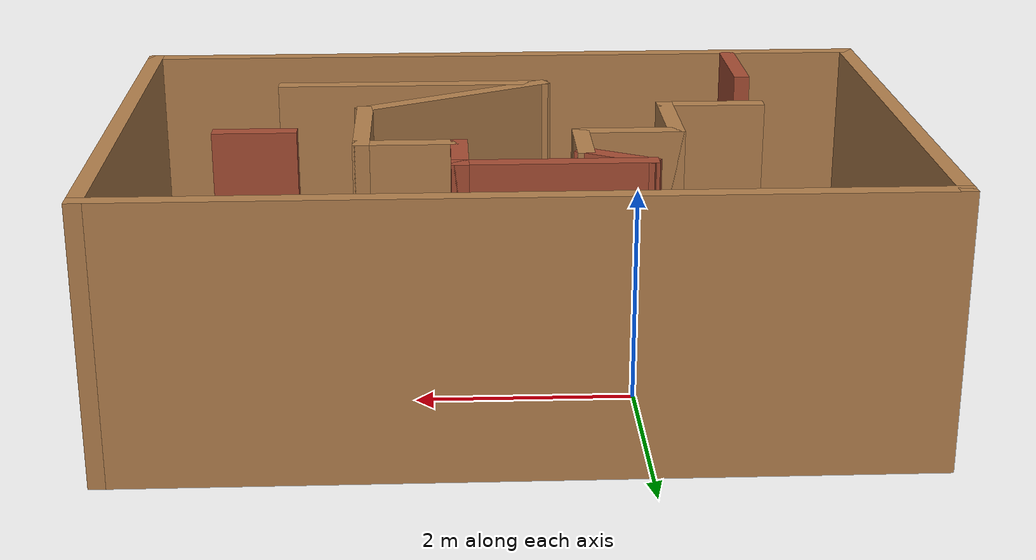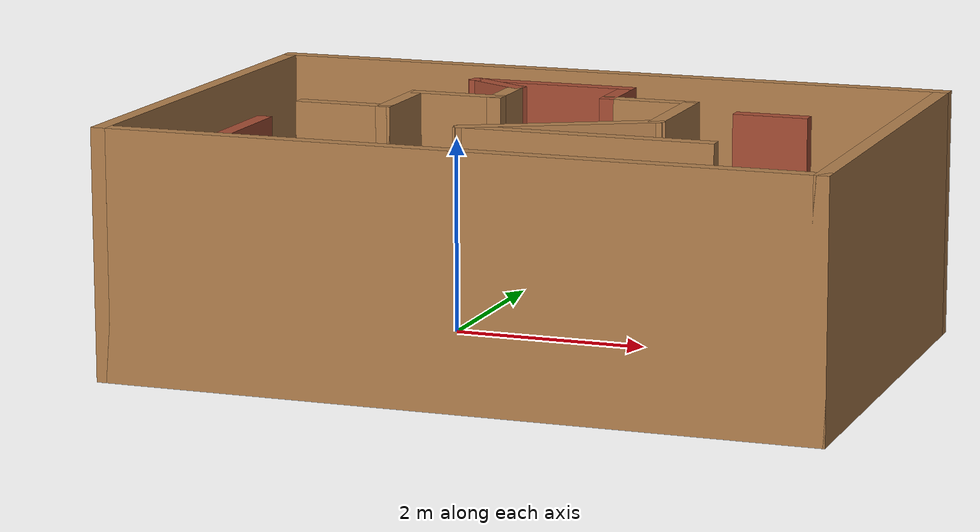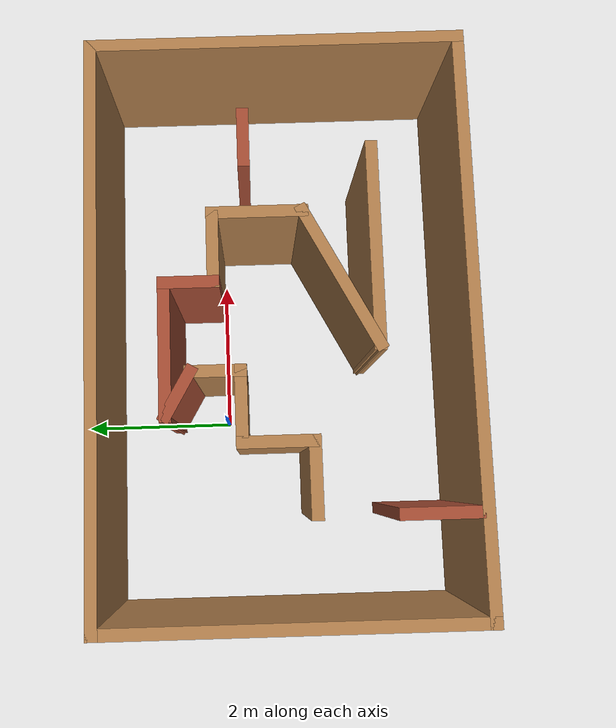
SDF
<?xml version='1.0'?>
<sdf version='1.7'>
  <model name='Test1'>
    <pose>1.08 -0.73 0 0 -0 0</pose>
    <link name='Wall_0'>
      <collision name='Wall_0_Collision'>
        <geometry>
          <box>
            <size>7.25 0.15 2.5</size>
          </box>
        </geometry>
        <pose>0 0 1.25 0 -0 0</pose>
      </collision>
      <visual name='Wall_0_Visual'>
        <pose>0 0 1.25 0 -0 0</pose>
        <geometry>
          <box>
            <size>7.25 0.15 2.5</size>
          </box>
        </geometry>
        <material>
          <script>
            <uri>file://media/materials/scripts/gazebo.material</uri>
            <name>Gazebo/Wood</name>
          </script>
          <ambient>1 1 1 1</ambient>
        </material>
        <meta>
          <layer>0</layer>
        </meta>
      </visual>
      <pose>0 -2.3 0 0 -0 0</pose>
    </link>
    <link name='Wall_1'>
      <collision name='Wall_1_Collision'>
        <geometry>
          <box>
            <size>4.75 0.15 2.5</size>
          </box>
        </geometry>
        <pose>0 0 1.25 0 -0 0</pose>
      </collision>
      <visual name='Wall_1_Visual'>
        <pose>0 0 1.25 0 -0 0</pose>
        <geometry>
          <box>
            <size>4.75 0.15 2.5</size>
          </box>
        </geometry>
        <material>
          <script>
            <uri>file://media/materials/scripts/gazebo.material</uri>
            <name>Gazebo/Wood</name>
          </script>
          <ambient>1 1 1 1</ambient>
        </material>
        <meta>
          <layer>0</layer>
        </meta>
      </visual>
      <pose>3.55 0 0 0 -0 1.5708</pose>
    </link>
    <link name='Wall_10'>
      <collision name='Wall_10_Collision'>
        <geometry>
          <box>
            <size>0.75 0.15 2.5</size>
          </box>
        </geometry>
        <pose>0 0 1.25 0 -0 0</pose>
      </collision>
      <visual name='Wall_10_Visual'>
        <pose>0 0 1.25 0 -0 0</pose>
        <geometry>
          <box>
            <size>0.75 0.15 2.5</size>
          </box>
        </geometry>
        <material>
          <script>
            <uri>file://media/materials/scripts/gazebo.material</uri>
            <name>Gazebo/Bricks</name>
          </script>
          <ambient>1 1 1 1</ambient>
        </material>
        <meta>
          <layer>0</layer>
        </meta>
      </visual>
      <pose>-0.838392 1.27519 0 0 -0 2.61799</pose>
    </link>
    <link name='Wall_11'>
      <collision name='Wall_11_Collision'>
        <geometry>
          <box>
            <size>1.75 0.15 2.5</size>
          </box>
        </geometry>
        <pose>0 0 1.25 0 -0 0</pose>
      </collision>
      <visual name='Wall_11_Visual'>
        <pose>0 0 1.25 0 -0 0</pose>
        <geometry>
          <box>
            <size>1.75 0.15 2.5</size>
          </box>
        </geometry>
        <material>
          <script>
            <uri>file://media/materials/scripts/gazebo.material</uri>
            <name>Gazebo/Bricks</name>
          </script>
          <ambient>1 1 1 1</ambient>
        </material>
        <meta>
          <layer>0</layer>
        </meta>
      </visual>
      <pose>-0.2982 1.42519 0 0 -0 0</pose>
    </link>
    <link name='Wall_12'>
      <collision name='Wall_12_Collision'>
        <geometry>
          <box>
            <size>0.75 0.15 2.5</size>
          </box>
        </geometry>
        <pose>0 0 1.25 0 -0 0</pose>
      </collision>
      <visual name='Wall_12_Visual'>
        <pose>0 0 1.25 0 -0 0</pose>
        <geometry>
          <box>
            <size>0.75 0.15 2.5</size>
          </box>
        </geometry>
        <material>
          <script>
            <uri>file://media/materials/scripts/gazebo.material</uri>
            <name>Gazebo/Bricks</name>
          </script>
          <ambient>1 1 1 1</ambient>
        </material>
        <meta>
          <layer>0</layer>
        </meta>
      </visual>
      <pose>0.5018 1.12519 0 0 -0 -1.5708</pose>
    </link>
    <link name='Wall_13'>
      <collision name='Wall_13_Collision'>
        <geometry>
          <box>
            <size>1 0.15 2.5</size>
          </box>
        </geometry>
        <pose>0 0 1.25 0 -0 0</pose>
      </collision>
      <visual name='Wall_13_Visual'>
        <pose>0 0 1.25 0 -0 0</pose>
        <geometry>
          <box>
            <size>1 0.15 2.5</size>
          </box>
        </geometry>
        <material>
          <script>
            <uri>file://media/materials/scripts/gazebo.material</uri>
            <name>Gazebo/Wood</name>
          </script>
          <ambient>1 1 1 1</ambient>
        </material>
        <meta>
          <layer>0</layer>
        </meta>
      </visual>
      <pose>0.9268 0.825194 0 0 -0 0</pose>
    </link>
    <link name='Wall_14'>
      <collision name='Wall_14_Collision'>
        <geometry>
          <box>
            <size>1.25 0.15 2.5</size>
          </box>
        </geometry>
        <pose>0 0 1.25 0 -0 0</pose>
      </collision>
      <visual name='Wall_14_Visual'>
        <pose>0 0 1.25 0 -0 0</pose>
        <geometry>
          <box>
            <size>1.25 0.15 2.5</size>
          </box>
        </geometry>
        <material>
          <script>
            <uri>file://media/materials/scripts/gazebo.material</uri>
            <name>Gazebo/Wood</name>
          </script>
          <ambient>1 1 1 1</ambient>
        </material>
        <meta>
          <layer>0</layer>
        </meta>
      </visual>
      <pose>1.3518 0.275194 0 0 -0 -1.5708</pose>
    </link>
    <link name='Wall_15'>
      <collision name='Wall_15_Collision'>
        <geometry>
          <box>
            <size>2.02805 0.15 2.5</size>
          </box>
        </geometry>
        <pose>0 0 1.25 0 -0 0</pose>
      </collision>
      <visual name='Wall_15_Visual'>
        <pose>0 0 1.25 0 -0 0</pose>
        <geometry>
          <box>
            <size>2.02805 0.15 2.5</size>
          </box>
        </geometry>
        <material>
          <script>
            <uri>file://media/materials/scripts/gazebo.material</uri>
            <name>Gazebo/Wood</name>
          </script>
          <ambient>1 1 1 1</ambient>
        </material>
        <meta>
          <layer>0</layer>
        </meta>
      </visual>
      <pose>0.520815 -0.712109 0 0 -0 -2.65717</pose>
    </link>
    <link name='Wall_16'>
      <collision name='Wall_16_Collision'>
        <geometry>
          <box>
            <size>2.5975 0.15 2.5</size>
          </box>
        </geometry>
        <pose>0 0 1.25 0 -0 0</pose>
      </collision>
      <visual name='Wall_16_Visual'>
        <pose>0 0 1.25 0 -0 0</pose>
        <geometry>
          <box>
            <size>2.5975 0.15 2.5</size>
          </box>
        </geometry>
        <material>
          <script>
            <uri>file://media/materials/scripts/gazebo.material</uri>
            <name>Gazebo/Wood</name>
          </script>
          <ambient>1 1 1 1</ambient>
        </material>
        <meta>
          <layer>0</layer>
        </meta>
      </visual>
      <pose>0.913316 -1.15046 0 0 -0 -0.000855</pose>
    </link>
    <link name='Wall_18'>
      <collision name='Wall_18_Collision'>
        <geometry>
          <box>
            <size>1 0.15 2.5</size>
          </box>
        </geometry>
        <pose>0 0 1.25 0 -0 0</pose>
      </collision>
      <visual name='Wall_18_Visual'>
        <pose>0 0 1.25 0 -0 0</pose>
        <geometry>
          <box>
            <size>1 0.15 2.5</size>
          </box>
        </geometry>
        <material>
          <script>
            <uri>file://media/materials/scripts/gazebo.material</uri>
            <name>Gazebo/Bricks</name>
          </script>
          <ambient>1 1 1 1</ambient>
        </material>
        <meta>
          <layer>0</layer>
        </meta>
      </visual>
      <pose>-2.30518 -1.76061 0 0 -0 -1.5708</pose>
    </link>
    <link name='Wall_2'>
      <collision name='Wall_2_Collision'>
        <geometry>
          <box>
            <size>7.25 0.15 2.5</size>
          </box>
        </geometry>
        <pose>0 0 1.25 0 -0 0</pose>
      </collision>
      <visual name='Wall_2_Visual'>
        <pose>0 0 1.25 0 -0 0</pose>
        <geometry>
          <box>
            <size>7.25 0.15 2.5</size>
          </box>
        </geometry>
        <material>
          <script>
            <uri>file://media/materials/scripts/gazebo.material</uri>
            <name>Gazebo/Wood</name>
          </script>
          <ambient>1 1 1 1</ambient>
        </material>
        <meta>
          <layer>0</layer>
        </meta>
      </visual>
      <pose>0 2.3 0 0 -0 3.14159</pose>
    </link>
    <link name='Wall_20'>
      <collision name='Wall_20_Collision'>
        <geometry>
          <box>
            <size>0.75 0.15 2.5</size>
          </box>
        </geometry>
        <pose>0 0 1.25 0 -0 0</pose>
      </collision>
      <visual name='Wall_20_Visual'>
        <pose>0 0 1.25 0 -0 0</pose>
        <geometry>
          <box>
            <size>0.75 0.15 2.5</size>
          </box>
        </geometry>
        <material>
          <script>
            <uri>file://media/materials/scripts/gazebo.material</uri>
            <name>Gazebo/Bricks</name>
          </script>
          <ambient>1 1 1 1</ambient>
        </material>
        <meta>
          <layer>0</layer>
        </meta>
      </visual>
      <pose>2.30405 0.42 0 0 -0 0</pose>
    </link>
    <link name='Wall_4'>
      <collision name='Wall_4_Collision'>
        <geometry>
          <box>
            <size>4.75 0.15 2.5</size>
          </box>
        </geometry>
        <pose>0 0 1.25 0 -0 0</pose>
      </collision>
      <visual name='Wall_4_Visual'>
        <pose>0 0 1.25 0 -0 0</pose>
        <geometry>
          <box>
            <size>4.75 0.15 2.5</size>
          </box>
        </geometry>
        <material>
          <script>
            <uri>file://media/materials/scripts/gazebo.material</uri>
            <name>Gazebo/Wood</name>
          </script>
          <ambient>1 1 1 1</ambient>
        </material>
        <meta>
          <layer>0</layer>
        </meta>
      </visual>
      <pose>-3.55 0 0 0 -0 -1.5708</pose>
    </link>
    <link name='Wall_6'>
      <collision name='Wall_6_Collision'>
        <geometry>
          <box>
            <size>1 0.15 2.5</size>
          </box>
        </geometry>
        <pose>0 0 1.25 0 -0 0</pose>
      </collision>
      <visual name='Wall_6_Visual'>
        <pose>0 0 1.25 0 -0 0</pose>
        <geometry>
          <box>
            <size>1 0.15 2.5</size>
          </box>
        </geometry>
        <material>
          <script>
            <uri>file://media/materials/scripts/gazebo.material</uri>
            <name>Gazebo/Wood</name>
          </script>
          <ambient>1 1 1 1</ambient>
        </material>
        <meta>
          <layer>0</layer>
        </meta>
      </visual>
      <pose>-1.85358 -0.324805 0 0 -0 0</pose>
    </link>
    <link name='Wall_7'>
      <collision name='Wall_7_Collision'>
        <geometry>
          <box>
            <size>1 0.15 2.5</size>
          </box>
        </geometry>
        <pose>0 0 1.25 0 -0 0</pose>
      </collision>
      <visual name='Wall_7_Visual'>
        <pose>0 0 1.25 0 -0 0</pose>
        <geometry>
          <box>
            <size>1 0.15 2.5</size>
          </box>
        </geometry>
        <material>
          <script>
            <uri>file://media/materials/scripts/gazebo.material</uri>
            <name>Gazebo/Wood</name>
          </script>
          <ambient>1 1 1 1</ambient>
        </material>
        <meta>
          <layer>0</layer>
        </meta>
      </visual>
      <pose>-1.42858 0.100194 0 0 -0 1.5708</pose>
    </link>
    <link name='Wall_8'>
      <collision name='Wall_8_Collision'>
        <geometry>
          <box>
            <size>1 0.15 2.5</size>
          </box>
        </geometry>
        <pose>0 0 1.25 0 -0 0</pose>
      </collision>
      <visual name='Wall_8_Visual'>
        <pose>0 0 1.25 0 -0 0</pose>
        <geometry>
          <box>
            <size>1 0.15 2.5</size>
          </box>
        </geometry>
        <material>
          <script>
            <uri>file://media/materials/scripts/gazebo.material</uri>
            <name>Gazebo/Wood</name>
          </script>
          <ambient>1 1 1 1</ambient>
        </material>
        <meta>
          <layer>0</layer>
        </meta>
      </visual>
      <pose>-1.00358 0.525194 0 0 -0 0</pose>
    </link>
    <link name='Wall_9'>
      <collision name='Wall_9_Collision'>
        <geometry>
          <box>
            <size>0.75 0.15 2.5</size>
          </box>
        </geometry>
        <pose>0 0 1.25 0 -0 0</pose>
      </collision>
      <visual name='Wall_9_Visual'>
        <pose>0 0 1.25 0 -0 0</pose>
        <geometry>
          <box>
            <size>0.75 0.15 2.5</size>
          </box>
        </geometry>
        <material>
          <script>
            <uri>file://media/materials/scripts/gazebo.material</uri>
            <name>Gazebo/Wood</name>
          </script>
          <ambient>1 1 1 1</ambient>
        </material>
        <meta>
          <layer>0</layer>
        </meta>
      </visual>
      <pose>-0.578584 0.825194 0 0 -0 1.5708</pose>
    </link>
    <static>1</static>
  </model>
</sdf>
